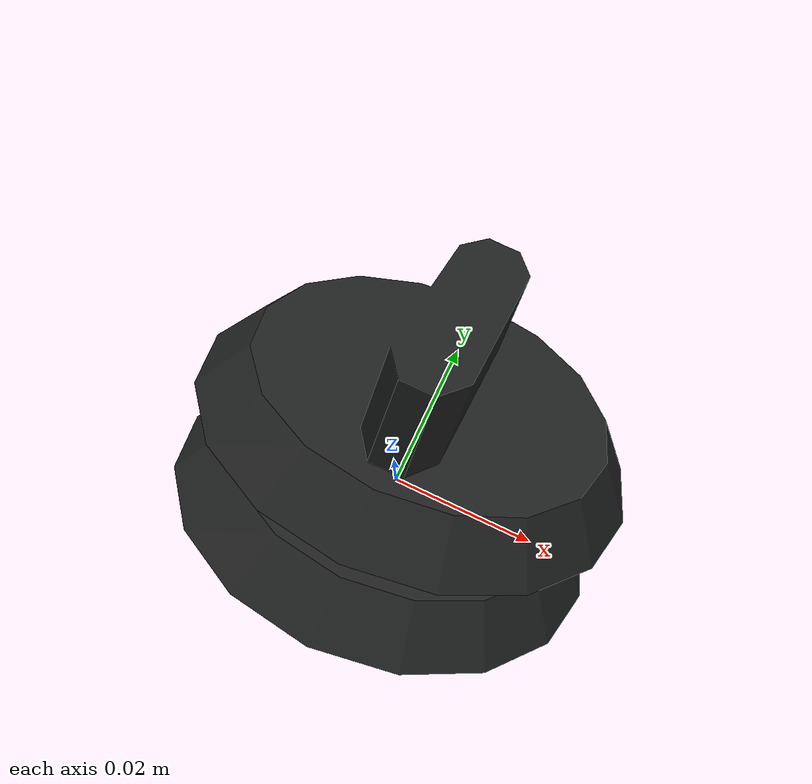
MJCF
<mujoco model="StoveKnob_b57953af">
  <compiler autolimits="true" boundmass="0.01" angle="radian"/>
  <default>
    <default class="/">
      <default class="__VISUAL_MJT__">
        <geom contype="0" conaffinity="0" group="0"/>
      </default>
      <default class="__STRUCTURAL_MJT__">
        <geom contype="8" conaffinity="15" group="4" friction="0.90000000000000002 0.90000000000000002 0.001" solref="0.025000000000000001 1" solimp="0.998 0.998 0.001"/>
      </default>
      <default class="__DYNAMIC_MJT__">
        <geom contype="1" conaffinity="15" group="4" friction="0.90000000000000002 0.90000000000000002 0.001" solref="0.025000000000000001 1" solimp="0.998 0.998 0.001"/>
      </default>
    </default>
  </default>
  <asset>
    <material name="material_StoveDarkMat" class="/" specular="0.5" shininess="0.5" rgba="0.1245675 0.1323529 0.12844549999999999 1"/>
    <mesh name="StoveKnob_b57953af_StoveKnob1_1d927b27" class="/" file="StoveKnob_b57953af_StoveKnob1_1d927b27/StoveKnob_b57953af_StoveKnob1_1d927b27.obj" scale="1 1 1" inertia="legacy"/>
    <mesh name="StoveKnob_b57953af_StoveKnobTurn1_3efd0ab3" class="/" file="StoveKnob_b57953af_StoveKnobTurn1_3efd0ab3/StoveKnob_b57953af_StoveKnobTurn1_3efd0ab3.obj" scale="1 1 1" inertia="legacy"/>
  </asset>
  <worldbody>
    <body name="StoveKnob_b57953af">
      <body name="StoveKnob_b57953af_StoveKnob1_1d927b27" pos="-0 0 0" quat="0.92426142649002496 0.38176015441979294 0 0">
        <geom name="StoveKnob_b57953af_StoveKnob1_1d927b27" class="__VISUAL_MJT__" type="mesh" material="material_StoveDarkMat" mesh="StoveKnob_b57953af_StoveKnob1_1d927b27"/>
        <joint name="StoveKnob_b57953af_joint" class="/" type="hinge" pos="-0 0 0" axis="0 -1 0" stiffness="0" range="-1.5707963267948966 0" damping="0.10000000000000001" frictionloss="0"/>
        <geom name="StoveKnob_b57953af_StoveKnob1_1d927b27_PrimitiveCollider_0" class="__DYNAMIC_MJT__" type="box" size="0.037558332085609436 0.019739549607038498 0.038340300321578979" rgba="0 1 0 1" pos="-0 0.01119926106184721 -7.0802030904815183e-10" quat="-1.8801222868829202e-07 0.99999999999998246 0 0"/>
        <body name="StoveKnob_b57953af_StoveKnobTurn1_3efd0ab3" pos="-0 0.014600047841668129 -4.2840838432312012e-08" quat="1 0 0 0">
          <geom name="StoveKnob_b57953af_StoveKnobTurn1_3efd0ab3" class="__VISUAL_MJT__" type="mesh" material="material_StoveDarkMat" mesh="StoveKnob_b57953af_StoveKnobTurn1_3efd0ab3"/>
        </body>
      </body>
    </body>
  </worldbody>
  <contact>
    <exclude name="//unnamed_contact_0" body1="StoveKnob_b57953af_StoveKnob1_1d927b27" body2="StoveKnob_b57953af_StoveKnobTurn1_3efd0ab3"/>
  </contact>
</mujoco>
